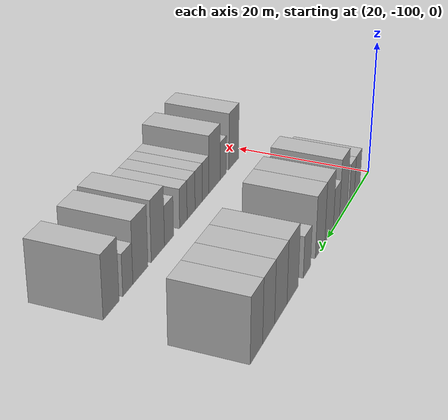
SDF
<sdf version="1.6">
 <world name="default">
  <model name="building_28">
   <static>1</static>
   <pose>25.0000 -93.9045 0 0.000000 0.000000 0.000000</pose>
   <link name="link">
    <pose>0 0 3.00 0 0 0</pose>
    <collision name="collision"><geometry><box><size>10.0000 2.8784 6.0000</size></box></geometry></collision>
    <visual name="visual">
     <cast_shadows>0</cast_shadows>
     <geometry><box><size>10.0000 2.8784 6.0000</size></box></geometry>
     <material>
      <script>
       <uri>model://HANNAS_wall/materials/scripts</uri>
       <uri>model://HANNAS_wall/materials/textures</uri>
       <name>vrc/HANNAS_wall</name>
      </script>
     </material>
    </visual>
   </link>
  </model>
  <model name="building_29">
   <static>1</static>
   <pose>25.0000 -91.1947 0 0.000000 0.000000 0.000000</pose>
   <link name="link">
    <pose>0 0 3.00 0 0 0</pose>
    <collision name="collision"><geometry><box><size>10.0000 2.5411 6.0000</size></box></geometry></collision>
    <visual name="visual">
     <cast_shadows>0</cast_shadows>
     <geometry><box><size>10.0000 2.5411 6.0000</size></box></geometry>
     <material>
      <script>
       <uri>model://HANNAS_wall/materials/scripts</uri>
       <uri>model://HANNAS_wall/materials/textures</uri>
       <name>vrc/HANNAS_wall</name>
      </script>
     </material>
    </visual>
   </link>
  </model>
  <model name="building_30">
   <static>1</static>
   <pose>25.0000 -87.0586 0 0.000000 0.000000 0.000000</pose>
   <link name="link">
    <pose>0 0 4.50 0 0 0</pose>
    <collision name="collision"><geometry><box><size>10.0000 3.7311 9.0000</size></box></geometry></collision>
    <visual name="visual">
     <cast_shadows>0</cast_shadows>
     <geometry><box><size>10.0000 3.7311 9.0000</size></box></geometry>
     <material>
      <script>
       <uri>model://HANNAS_wall/materials/scripts</uri>
       <uri>model://HANNAS_wall/materials/textures</uri>
       <name>vrc/HANNAS_wall</name>
      </script>
     </material>
    </visual>
   </link>
  </model>
  <model name="building_31">
   <static>1</static>
   <pose>25.0000 -83.7866 0 0.000000 0.000000 0.000000</pose>
   <link name="link">
    <pose>0 0 3.00 0 0 0</pose>
    <collision name="collision"><geometry><box><size>10.0000 2.8130 6.0000</size></box></geometry></collision>
    <visual name="visual">
     <cast_shadows>0</cast_shadows>
     <geometry><box><size>10.0000 2.8130 6.0000</size></box></geometry>
     <material>
      <script>
       <uri>model://HANNAS_wall/materials/scripts</uri>
       <uri>model://HANNAS_wall/materials/textures</uri>
       <name>vrc/HANNAS_wall</name>
      </script>
     </material>
    </visual>
   </link>
  </model>
  <model name="building_32">
   <static>1</static>
   <pose>25.0000 -80.4817 0 0.000000 0.000000 0.000000</pose>
   <link name="link">
    <pose>0 0 4.50 0 0 0</pose>
    <collision name="collision"><geometry><box><size>10.0000 3.7967 9.0000</size></box></geometry></collision>
    <visual name="visual">
     <cast_shadows>0</cast_shadows>
     <geometry><box><size>10.0000 3.7967 9.0000</size></box></geometry>
     <material>
      <script>
       <uri>model://HANNAS_wall/materials/scripts</uri>
       <uri>model://HANNAS_wall/materials/textures</uri>
       <name>vrc/HANNAS_wall</name>
      </script>
     </material>
    </visual>
   </link>
  </model>
  <model name="building_33">
   <static>1</static>
   <pose>25.0000 -76.5333 0 0.000000 0.000000 0.000000</pose>
   <link name="link">
    <pose>0 0 4.50 0 0 0</pose>
    <collision name="collision"><geometry><box><size>10.0000 4.1000 9.0000</size></box></geometry></collision>
    <visual name="visual">
     <cast_shadows>0</cast_shadows>
     <geometry><box><size>10.0000 4.1000 9.0000</size></box></geometry>
     <material>
      <script>
       <uri>model://HANNAS_wall/materials/scripts</uri>
       <uri>model://HANNAS_wall/materials/textures</uri>
       <name>vrc/HANNAS_wall</name>
      </script>
     </material>
    </visual>
   </link>
  </model>
  <model name="building_34">
   <static>1</static>
   <pose>25.0000 -71.0130 0 0.000000 0.000000 0.000000</pose>
   <link name="link">
    <pose>0 0 3.00 0 0 0</pose>
    <collision name="collision"><geometry><box><size>10.0000 2.9405 6.0000</size></box></geometry></collision>
    <visual name="visual">
     <cast_shadows>0</cast_shadows>
     <geometry><box><size>10.0000 2.9405 6.0000</size></box></geometry>
     <material>
      <script>
       <uri>model://HANNAS_wall/materials/scripts</uri>
       <uri>model://HANNAS_wall/materials/textures</uri>
       <name>vrc/HANNAS_wall</name>
      </script>
     </material>
    </visual>
   </link>
  </model>
  <model name="building_35">
   <static>1</static>
   <pose>25.0000 -65.4058 0 0.000000 0.000000 0.000000</pose>
   <link name="link">
    <pose>0 0 4.50 0 0 0</pose>
    <collision name="collision"><geometry><box><size>10.0000 4.2739 9.0000</size></box></geometry></collision>
    <visual name="visual">
     <cast_shadows>0</cast_shadows>
     <geometry><box><size>10.0000 4.2739 9.0000</size></box></geometry>
     <material>
      <script>
       <uri>model://HANNAS_wall/materials/scripts</uri>
       <uri>model://HANNAS_wall/materials/textures</uri>
       <name>vrc/HANNAS_wall</name>
      </script>
     </material>
    </visual>
   </link>
  </model>
  <model name="building_36">
   <static>1</static>
   <pose>25.0000 -61.0355 0 0.000000 0.000000 0.000000</pose>
   <link name="link">
    <pose>0 0 4.50 0 0 0</pose>
    <collision name="collision"><geometry><box><size>10.0000 4.4668 9.0000</size></box></geometry></collision>
    <visual name="visual">
     <cast_shadows>0</cast_shadows>
     <geometry><box><size>10.0000 4.4668 9.0000</size></box></geometry>
     <material>
      <script>
       <uri>model://HANNAS_wall/materials/scripts</uri>
       <uri>model://HANNAS_wall/materials/textures</uri>
       <name>vrc/HANNAS_wall</name>
      </script>
     </material>
    </visual>
   </link>
  </model>
  <model name="building_37">
   <static>1</static>
   <pose>25.0000 -56.7351 0 0.000000 0.000000 0.000000</pose>
   <link name="link">
    <pose>0 0 4.50 0 0 0</pose>
    <collision name="collision"><geometry><box><size>10.0000 4.1340 9.0000</size></box></geometry></collision>
    <visual name="visual">
     <cast_shadows>0</cast_shadows>
     <geometry><box><size>10.0000 4.1340 9.0000</size></box></geometry>
     <material>
      <script>
       <uri>model://HANNAS_wall/materials/scripts</uri>
       <uri>model://HANNAS_wall/materials/textures</uri>
       <name>vrc/HANNAS_wall</name>
      </script>
     </material>
    </visual>
   </link>
  </model>
  <model name="building_38">
   <static>1</static>
   <pose>25.0000 -52.6220 0 0.000000 0.000000 0.000000</pose>
   <link name="link">
    <pose>0 0 4.50 0 0 0</pose>
    <collision name="collision"><geometry><box><size>10.0000 4.0922 9.0000</size></box></geometry></collision>
    <visual name="visual">
     <cast_shadows>0</cast_shadows>
     <geometry><box><size>10.0000 4.0922 9.0000</size></box></geometry>
     <material>
      <script>
       <uri>model://HANNAS_wall/materials/scripts</uri>
       <uri>model://HANNAS_wall/materials/textures</uri>
       <name>vrc/HANNAS_wall</name>
      </script>
     </material>
    </visual>
   </link>
  </model>
  <model name="building_118">
   <static>1</static>
   <pose>44.0000 -95.0188 0 0.000000 0.000000 0.000000</pose>
   <link name="link">
    <pose>0 0 4.50 0 0 0</pose>
    <collision name="collision"><geometry><box><size>10.0000 4.0011 9.0000</size></box></geometry></collision>
    <visual name="visual">
     <cast_shadows>0</cast_shadows>
     <geometry><box><size>10.0000 4.0011 9.0000</size></box></geometry>
     <material>
      <script>
       <uri>model://HANNAS_wall/materials/scripts</uri>
       <uri>model://HANNAS_wall/materials/textures</uri>
       <name>vrc/HANNAS_wall</name>
      </script>
     </material>
    </visual>
   </link>
  </model>
  <model name="building_119">
   <static>1</static>
   <pose>44.0000 -90.8053 0 0.000000 0.000000 0.000000</pose>
   <link name="link">
    <pose>0 0 3.00 0 0 0</pose>
    <collision name="collision"><geometry><box><size>10.0000 2.4258 6.0000</size></box></geometry></collision>
    <visual name="visual">
     <cast_shadows>0</cast_shadows>
     <geometry><box><size>10.0000 2.4258 6.0000</size></box></geometry>
     <material>
      <script>
       <uri>model://HANNAS_wall/materials/scripts</uri>
       <uri>model://HANNAS_wall/materials/textures</uri>
       <name>vrc/HANNAS_wall</name>
      </script>
     </material>
    </visual>
   </link>
  </model>
  <model name="building_120">
   <static>1</static>
   <pose>44.0000 -87.4531 0 0.000000 0.000000 0.000000</pose>
   <link name="link">
    <pose>0 0 4.50 0 0 0</pose>
    <collision name="collision"><geometry><box><size>10.0000 4.2787 9.0000</size></box></geometry></collision>
    <visual name="visual">
     <cast_shadows>0</cast_shadows>
     <geometry><box><size>10.0000 4.2787 9.0000</size></box></geometry>
     <material>
      <script>
       <uri>model://HANNAS_wall/materials/scripts</uri>
       <uri>model://HANNAS_wall/materials/textures</uri>
       <name>vrc/HANNAS_wall</name>
      </script>
     </material>
    </visual>
   </link>
  </model>
  <model name="building_121">
   <static>1</static>
   <pose>44.0000 -84.0812 0 0.000000 0.000000 0.000000</pose>
   <link name="link">
    <pose>0 0 3.00 0 0 0</pose>
    <collision name="collision"><geometry><box><size>10.0000 2.4651 6.0000</size></box></geometry></collision>
    <visual name="visual">
     <cast_shadows>0</cast_shadows>
     <geometry><box><size>10.0000 2.4651 6.0000</size></box></geometry>
     <material>
      <script>
       <uri>model://HANNAS_wall/materials/scripts</uri>
       <uri>model://HANNAS_wall/materials/textures</uri>
       <name>vrc/HANNAS_wall</name>
      </script>
     </material>
    </visual>
   </link>
  </model>
  <model name="building_122">
   <static>1</static>
   <pose>44.0000 -81.5686 0 0.000000 0.000000 0.000000</pose>
   <link name="link">
    <pose>0 0 3.00 0 0 0</pose>
    <collision name="collision"><geometry><box><size>10.0000 2.5601 6.0000</size></box></geometry></collision>
    <visual name="visual">
     <cast_shadows>0</cast_shadows>
     <geometry><box><size>10.0000 2.5601 6.0000</size></box></geometry>
     <material>
      <script>
       <uri>model://HANNAS_wall/materials/scripts</uri>
       <uri>model://HANNAS_wall/materials/textures</uri>
       <name>vrc/HANNAS_wall</name>
      </script>
     </material>
    </visual>
   </link>
  </model>
  <model name="building_123">
   <static>1</static>
   <pose>44.0000 -78.8961 0 0.000000 0.000000 0.000000</pose>
   <link name="link">
    <pose>0 0 3.00 0 0 0</pose>
    <collision name="collision"><geometry><box><size>10.0000 2.7849 6.0000</size></box></geometry></collision>
    <visual name="visual">
     <cast_shadows>0</cast_shadows>
     <geometry><box><size>10.0000 2.7849 6.0000</size></box></geometry>
     <material>
      <script>
       <uri>model://HANNAS_wall/materials/scripts</uri>
       <uri>model://HANNAS_wall/materials/textures</uri>
       <name>vrc/HANNAS_wall</name>
      </script>
     </material>
    </visual>
   </link>
  </model>
  <model name="building_124">
   <static>1</static>
   <pose>44.0000 -76.2261 0 0.000000 0.000000 0.000000</pose>
   <link name="link">
    <pose>0 0 3.00 0 0 0</pose>
    <collision name="collision"><geometry><box><size>10.0000 2.5551 6.0000</size></box></geometry></collision>
    <visual name="visual">
     <cast_shadows>0</cast_shadows>
     <geometry><box><size>10.0000 2.5551 6.0000</size></box></geometry>
     <material>
      <script>
       <uri>model://HANNAS_wall/materials/scripts</uri>
       <uri>model://HANNAS_wall/materials/textures</uri>
       <name>vrc/HANNAS_wall</name>
      </script>
     </material>
    </visual>
   </link>
  </model>
  <model name="building_125">
   <static>1</static>
   <pose>44.0000 -71.4817 0 0.000000 0.000000 0.000000</pose>
   <link name="link">
    <pose>0 0 3.00 0 0 0</pose>
    <collision name="collision"><geometry><box><size>10.0000 2.9337 6.0000</size></box></geometry></collision>
    <visual name="visual">
     <cast_shadows>0</cast_shadows>
     <geometry><box><size>10.0000 2.9337 6.0000</size></box></geometry>
     <material>
      <script>
       <uri>model://HANNAS_wall/materials/scripts</uri>
       <uri>model://HANNAS_wall/materials/textures</uri>
       <name>vrc/HANNAS_wall</name>
      </script>
     </material>
    </visual>
   </link>
  </model>
  <model name="building_126">
   <static>1</static>
   <pose>44.0000 -67.9407 0 0.000000 0.000000 0.000000</pose>
   <link name="link">
    <pose>0 0 4.50 0 0 0</pose>
    <collision name="collision"><geometry><box><size>10.0000 4.1482 9.0000</size></box></geometry></collision>
    <visual name="visual">
     <cast_shadows>0</cast_shadows>
     <geometry><box><size>10.0000 4.1482 9.0000</size></box></geometry>
     <material>
      <script>
       <uri>model://HANNAS_wall/materials/scripts</uri>
       <uri>model://HANNAS_wall/materials/textures</uri>
       <name>vrc/HANNAS_wall</name>
      </script>
     </material>
    </visual>
   </link>
  </model>
  <model name="building_127">
   <static>1</static>
   <pose>44.0000 -62.6533 0 0.000000 0.000000 0.000000</pose>
   <link name="link">
    <pose>0 0 4.50 0 0 0</pose>
    <collision name="collision"><geometry><box><size>10.0000 4.4266 9.0000</size></box></geometry></collision>
    <visual name="visual">
     <cast_shadows>0</cast_shadows>
     <geometry><box><size>10.0000 4.4266 9.0000</size></box></geometry>
     <material>
      <script>
       <uri>model://HANNAS_wall/materials/scripts</uri>
       <uri>model://HANNAS_wall/materials/textures</uri>
       <name>vrc/HANNAS_wall</name>
      </script>
     </material>
    </visual>
   </link>
  </model>
  <model name="building_128">
   <static>1</static>
   <pose>44.0000 -59.0018 0 0.000000 0.000000 0.000000</pose>
   <link name="link">
    <pose>0 0 3.00 0 0 0</pose>
    <collision name="collision"><geometry><box><size>10.0000 2.8765 6.0000</size></box></geometry></collision>
    <visual name="visual">
     <cast_shadows>0</cast_shadows>
     <geometry><box><size>10.0000 2.8765 6.0000</size></box></geometry>
     <material>
      <script>
       <uri>model://HANNAS_wall/materials/scripts</uri>
       <uri>model://HANNAS_wall/materials/textures</uri>
       <name>vrc/HANNAS_wall</name>
      </script>
     </material>
    </visual>
   </link>
  </model>
  <model name="building_129">
   <static>1</static>
   <pose>44.0000 -54.4012 0 0.000000 0.000000 0.000000</pose>
   <link name="link">
    <pose>0 0 4.50 0 0 0</pose>
    <collision name="collision"><geometry><box><size>10.0000 4.3247 9.0000</size></box></geometry></collision>
    <visual name="visual">
     <cast_shadows>0</cast_shadows>
     <geometry><box><size>10.0000 4.3247 9.0000</size></box></geometry>
     <material>
      <script>
       <uri>model://HANNAS_wall/materials/scripts</uri>
       <uri>model://HANNAS_wall/materials/textures</uri>
       <name>vrc/HANNAS_wall</name>
      </script>
     </material>
    </visual>
   </link>
  </model>
 </world>
</sdf>
